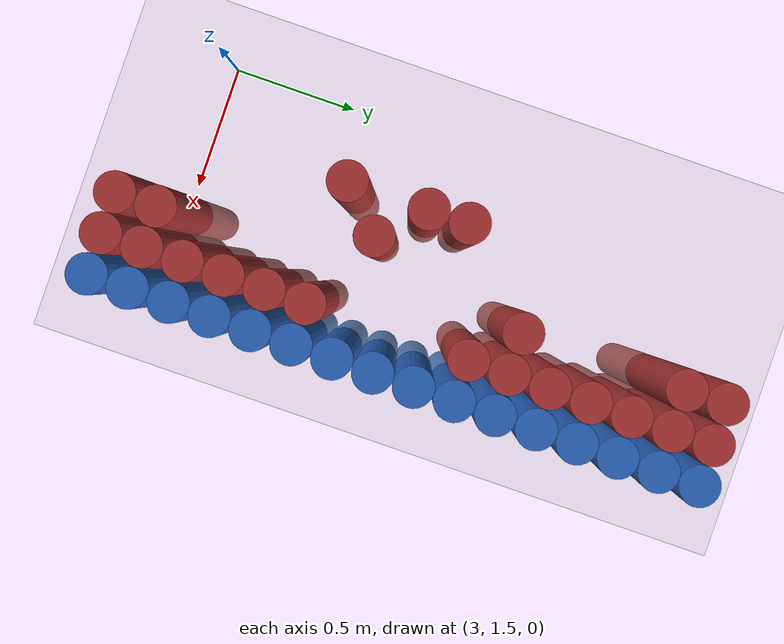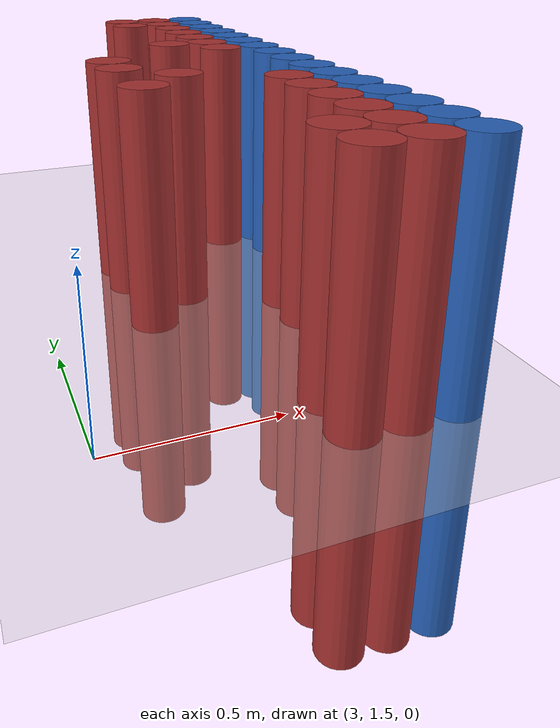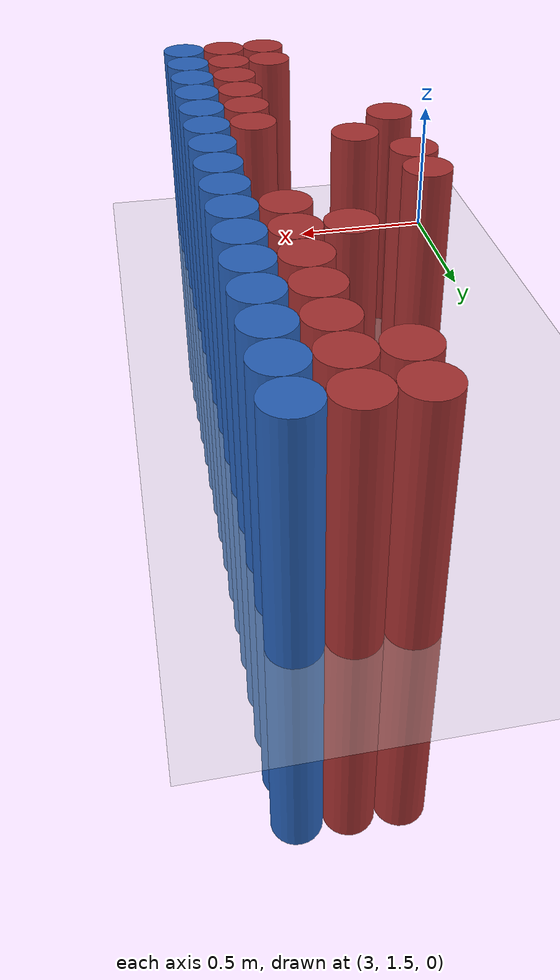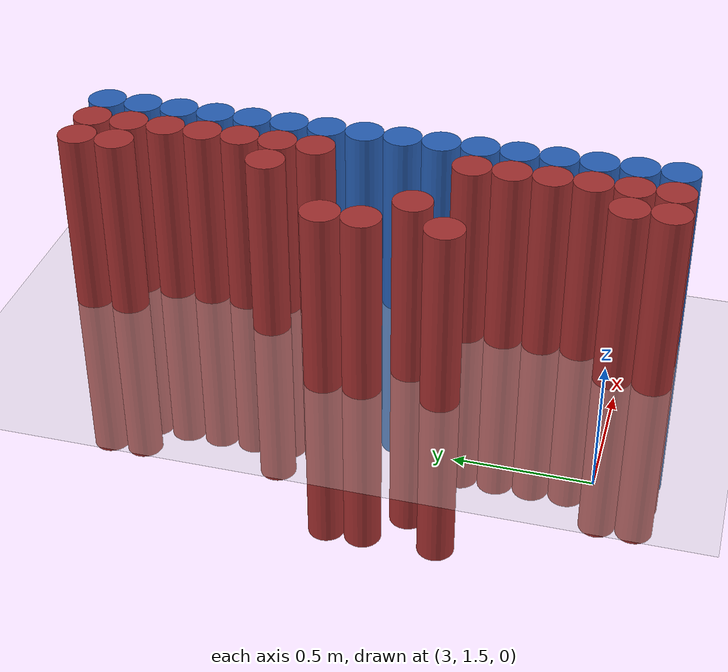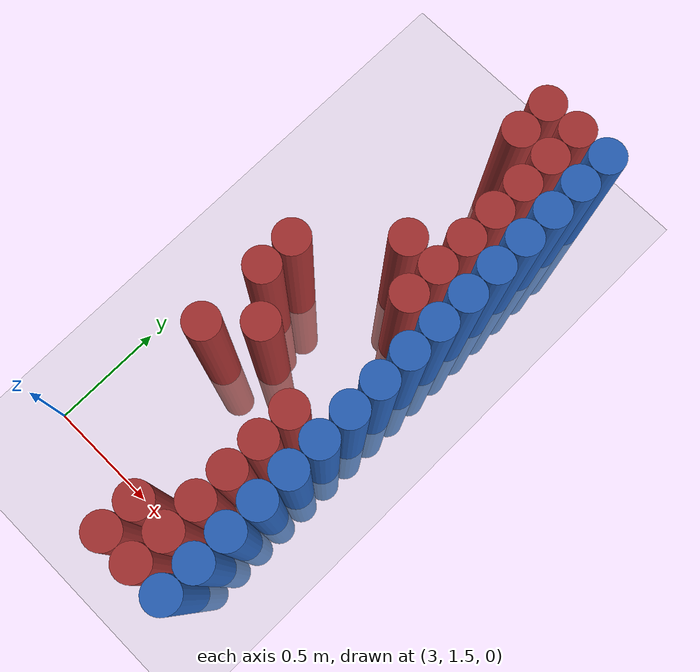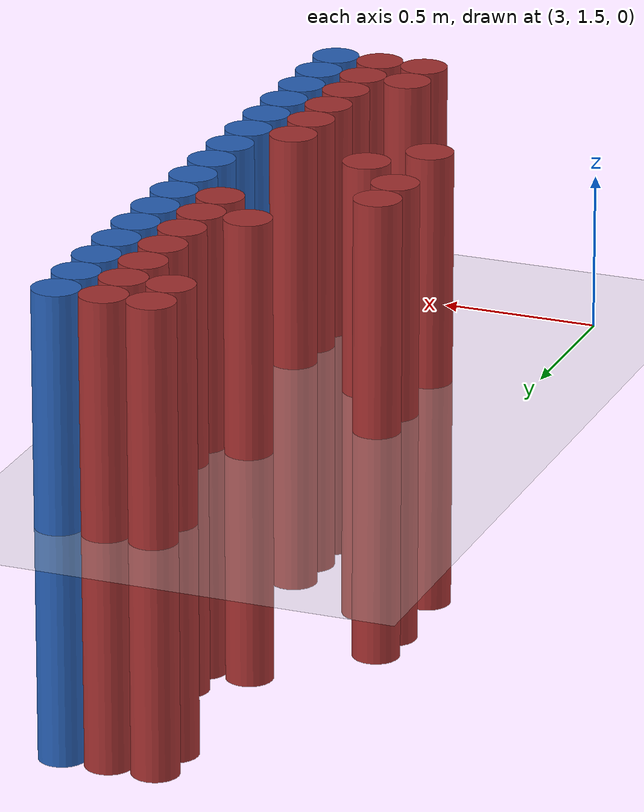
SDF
<sdf version="1.6">
 <world name="default">
  <model name="ground_plane">
   <static>1</static>
   <link name="link">
    <collision name="collision">
     <geometry><plane><normal>0 0 1</normal><size>100 100</size></plane></geometry>
     <surface><friction><ode><mu>100</mu><mu2>50</mu2></ode></friction></surface>
    </collision>
    <visual name="visual">
     <cast_shadows>0</cast_shadows>
     <geometry><plane><normal>0 0 1</normal><size>100 100</size></plane></geometry>
     <material>
      <script><uri>file://media/materials/scripts/gazebo.material</uri><name>Gazebo/Grey</name></script>
     </material>
    </visual>
   </link>
  </model>
  <model name="unit_cylinder_134">
   <static>1</static>
   <pose>3.925000 1.525000 0.000000 0.000000 0.000000 0.000000</pose>
   <link name="link">
    <inertial>
     <mass>1</mass>
     <inertia><ixx>0.145833</ixx><ixy>0</ixy><ixz>0</ixz><iyy>0.145833</iyy><iyz>0</iyz><izz>0.125</izz></inertia>
    </inertial>
    <collision name="collision">
     <geometry><cylinder><radius>0.075000</radius><length>1.5</length></cylinder></geometry>
    </collision>
    <visual name="visual">
     <geometry><cylinder><radius>0.075000</radius><length>1.5</length></cylinder></geometry>
     <material>
      <ambient>0.152000 0.379000 0.720000 1</ambient>
      <diffuse>0.152000 0.379000 0.720000 1</diffuse>
     </material>
     <material>
      <script><name>Gazebo/Grey</name><uri>file://media/materials/scripts/gazebo.material</uri></script>
     </material>
    </visual>
   </link>
  </model>
  <model name="unit_cylinder_136">
   <static>1</static>
   <pose>3.925000 1.675000 0.000000 0.000000 0.000000 0.000000</pose>
   <link name="link">
    <inertial>
     <mass>1</mass>
     <inertia><ixx>0.145833</ixx><ixy>0</ixy><ixz>0</ixz><iyy>0.145833</iyy><iyz>0</iyz><izz>0.125</izz></inertia>
    </inertial>
    <collision name="collision">
     <geometry><cylinder><radius>0.075000</radius><length>1.5</length></cylinder></geometry>
    </collision>
    <visual name="visual">
     <geometry><cylinder><radius>0.075000</radius><length>1.5</length></cylinder></geometry>
     <material>
      <ambient>0.152000 0.379000 0.720000 1</ambient>
      <diffuse>0.152000 0.379000 0.720000 1</diffuse>
     </material>
     <material>
      <script><name>Gazebo/Grey</name><uri>file://media/materials/scripts/gazebo.material</uri></script>
     </material>
    </visual>
   </link>
  </model>
  <model name="unit_cylinder_138">
   <static>1</static>
   <pose>3.925000 1.825000 0.000000 0.000000 0.000000 0.000000</pose>
   <link name="link">
    <inertial>
     <mass>1</mass>
     <inertia><ixx>0.145833</ixx><ixy>0</ixy><ixz>0</ixz><iyy>0.145833</iyy><iyz>0</iyz><izz>0.125</izz></inertia>
    </inertial>
    <collision name="collision">
     <geometry><cylinder><radius>0.075000</radius><length>1.5</length></cylinder></geometry>
    </collision>
    <visual name="visual">
     <geometry><cylinder><radius>0.075000</radius><length>1.5</length></cylinder></geometry>
     <material>
      <ambient>0.152000 0.379000 0.720000 1</ambient>
      <diffuse>0.152000 0.379000 0.720000 1</diffuse>
     </material>
     <material>
      <script><name>Gazebo/Grey</name><uri>file://media/materials/scripts/gazebo.material</uri></script>
     </material>
    </visual>
   </link>
  </model>
  <model name="unit_cylinder_140">
   <static>1</static>
   <pose>3.925000 1.975000 0.000000 0.000000 0.000000 0.000000</pose>
   <link name="link">
    <inertial>
     <mass>1</mass>
     <inertia><ixx>0.145833</ixx><ixy>0</ixy><ixz>0</ixz><iyy>0.145833</iyy><iyz>0</iyz><izz>0.125</izz></inertia>
    </inertial>
    <collision name="collision">
     <geometry><cylinder><radius>0.075000</radius><length>1.5</length></cylinder></geometry>
    </collision>
    <visual name="visual">
     <geometry><cylinder><radius>0.075000</radius><length>1.5</length></cylinder></geometry>
     <material>
      <ambient>0.152000 0.379000 0.720000 1</ambient>
      <diffuse>0.152000 0.379000 0.720000 1</diffuse>
     </material>
     <material>
      <script><name>Gazebo/Grey</name><uri>file://media/materials/scripts/gazebo.material</uri></script>
     </material>
    </visual>
   </link>
  </model>
  <model name="unit_cylinder_142">
   <static>1</static>
   <pose>3.925000 2.125000 0.000000 0.000000 0.000000 0.000000</pose>
   <link name="link">
    <inertial>
     <mass>1</mass>
     <inertia><ixx>0.145833</ixx><ixy>0</ixy><ixz>0</ixz><iyy>0.145833</iyy><iyz>0</iyz><izz>0.125</izz></inertia>
    </inertial>
    <collision name="collision">
     <geometry><cylinder><radius>0.075000</radius><length>1.5</length></cylinder></geometry>
    </collision>
    <visual name="visual">
     <geometry><cylinder><radius>0.075000</radius><length>1.5</length></cylinder></geometry>
     <material>
      <ambient>0.152000 0.379000 0.720000 1</ambient>
      <diffuse>0.152000 0.379000 0.720000 1</diffuse>
     </material>
     <material>
      <script><name>Gazebo/Grey</name><uri>file://media/materials/scripts/gazebo.material</uri></script>
     </material>
    </visual>
   </link>
  </model>
  <model name="unit_cylinder_144">
   <static>1</static>
   <pose>3.925000 2.275000 0.000000 0.000000 0.000000 0.000000</pose>
   <link name="link">
    <inertial>
     <mass>1</mass>
     <inertia><ixx>0.145833</ixx><ixy>0</ixy><ixz>0</ixz><iyy>0.145833</iyy><iyz>0</iyz><izz>0.125</izz></inertia>
    </inertial>
    <collision name="collision">
     <geometry><cylinder><radius>0.075000</radius><length>1.5</length></cylinder></geometry>
    </collision>
    <visual name="visual">
     <geometry><cylinder><radius>0.075000</radius><length>1.5</length></cylinder></geometry>
     <material>
      <ambient>0.152000 0.379000 0.720000 1</ambient>
      <diffuse>0.152000 0.379000 0.720000 1</diffuse>
     </material>
     <material>
      <script><name>Gazebo/Grey</name><uri>file://media/materials/scripts/gazebo.material</uri></script>
     </material>
    </visual>
   </link>
  </model>
  <model name="unit_cylinder_146">
   <static>1</static>
   <pose>3.925000 2.425000 0.000000 0.000000 0.000000 0.000000</pose>
   <link name="link">
    <inertial>
     <mass>1</mass>
     <inertia><ixx>0.145833</ixx><ixy>0</ixy><ixz>0</ixz><iyy>0.145833</iyy><iyz>0</iyz><izz>0.125</izz></inertia>
    </inertial>
    <collision name="collision">
     <geometry><cylinder><radius>0.075000</radius><length>1.5</length></cylinder></geometry>
    </collision>
    <visual name="visual">
     <geometry><cylinder><radius>0.075000</radius><length>1.5</length></cylinder></geometry>
     <material>
      <ambient>0.152000 0.379000 0.720000 1</ambient>
      <diffuse>0.152000 0.379000 0.720000 1</diffuse>
     </material>
     <material>
      <script><name>Gazebo/Grey</name><uri>file://media/materials/scripts/gazebo.material</uri></script>
     </material>
    </visual>
   </link>
  </model>
  <model name="unit_cylinder_148">
   <static>1</static>
   <pose>3.925000 2.575000 0.000000 0.000000 0.000000 0.000000</pose>
   <link name="link">
    <inertial>
     <mass>1</mass>
     <inertia><ixx>0.145833</ixx><ixy>0</ixy><ixz>0</ixz><iyy>0.145833</iyy><iyz>0</iyz><izz>0.125</izz></inertia>
    </inertial>
    <collision name="collision">
     <geometry><cylinder><radius>0.075000</radius><length>1.5</length></cylinder></geometry>
    </collision>
    <visual name="visual">
     <geometry><cylinder><radius>0.075000</radius><length>1.5</length></cylinder></geometry>
     <material>
      <ambient>0.152000 0.379000 0.720000 1</ambient>
      <diffuse>0.152000 0.379000 0.720000 1</diffuse>
     </material>
     <material>
      <script><name>Gazebo/Grey</name><uri>file://media/materials/scripts/gazebo.material</uri></script>
     </material>
    </visual>
   </link>
  </model>
  <model name="unit_cylinder_150">
   <static>1</static>
   <pose>3.925000 2.725000 0.000000 0.000000 0.000000 0.000000</pose>
   <link name="link">
    <inertial>
     <mass>1</mass>
     <inertia><ixx>0.145833</ixx><ixy>0</ixy><ixz>0</ixz><iyy>0.145833</iyy><iyz>0</iyz><izz>0.125</izz></inertia>
    </inertial>
    <collision name="collision">
     <geometry><cylinder><radius>0.075000</radius><length>1.5</length></cylinder></geometry>
    </collision>
    <visual name="visual">
     <geometry><cylinder><radius>0.075000</radius><length>1.5</length></cylinder></geometry>
     <material>
      <ambient>0.152000 0.379000 0.720000 1</ambient>
      <diffuse>0.152000 0.379000 0.720000 1</diffuse>
     </material>
     <material>
      <script><name>Gazebo/Grey</name><uri>file://media/materials/scripts/gazebo.material</uri></script>
     </material>
    </visual>
   </link>
  </model>
  <model name="unit_cylinder_152">
   <static>1</static>
   <pose>3.925000 2.875000 0.000000 0.000000 0.000000 0.000000</pose>
   <link name="link">
    <inertial>
     <mass>1</mass>
     <inertia><ixx>0.145833</ixx><ixy>0</ixy><ixz>0</ixz><iyy>0.145833</iyy><iyz>0</iyz><izz>0.125</izz></inertia>
    </inertial>
    <collision name="collision">
     <geometry><cylinder><radius>0.075000</radius><length>1.5</length></cylinder></geometry>
    </collision>
    <visual name="visual">
     <geometry><cylinder><radius>0.075000</radius><length>1.5</length></cylinder></geometry>
     <material>
      <ambient>0.152000 0.379000 0.720000 1</ambient>
      <diffuse>0.152000 0.379000 0.720000 1</diffuse>
     </material>
     <material>
      <script><name>Gazebo/Grey</name><uri>file://media/materials/scripts/gazebo.material</uri></script>
     </material>
    </visual>
   </link>
  </model>
  <model name="unit_cylinder_154">
   <static>1</static>
   <pose>3.925000 3.025000 0.000000 0.000000 0.000000 0.000000</pose>
   <link name="link">
    <inertial>
     <mass>1</mass>
     <inertia><ixx>0.145833</ixx><ixy>0</ixy><ixz>0</ixz><iyy>0.145833</iyy><iyz>0</iyz><izz>0.125</izz></inertia>
    </inertial>
    <collision name="collision">
     <geometry><cylinder><radius>0.075000</radius><length>1.5</length></cylinder></geometry>
    </collision>
    <visual name="visual">
     <geometry><cylinder><radius>0.075000</radius><length>1.5</length></cylinder></geometry>
     <material>
      <ambient>0.152000 0.379000 0.720000 1</ambient>
      <diffuse>0.152000 0.379000 0.720000 1</diffuse>
     </material>
     <material>
      <script><name>Gazebo/Grey</name><uri>file://media/materials/scripts/gazebo.material</uri></script>
     </material>
    </visual>
   </link>
  </model>
  <model name="unit_cylinder_156">
   <static>1</static>
   <pose>3.925000 3.175000 0.000000 0.000000 0.000000 0.000000</pose>
   <link name="link">
    <inertial>
     <mass>1</mass>
     <inertia><ixx>0.145833</ixx><ixy>0</ixy><ixz>0</ixz><iyy>0.145833</iyy><iyz>0</iyz><izz>0.125</izz></inertia>
    </inertial>
    <collision name="collision">
     <geometry><cylinder><radius>0.075000</radius><length>1.5</length></cylinder></geometry>
    </collision>
    <visual name="visual">
     <geometry><cylinder><radius>0.075000</radius><length>1.5</length></cylinder></geometry>
     <material>
      <ambient>0.152000 0.379000 0.720000 1</ambient>
      <diffuse>0.152000 0.379000 0.720000 1</diffuse>
     </material>
     <material>
      <script><name>Gazebo/Grey</name><uri>file://media/materials/scripts/gazebo.material</uri></script>
     </material>
    </visual>
   </link>
  </model>
  <model name="unit_cylinder_158">
   <static>1</static>
   <pose>3.925000 3.325000 0.000000 0.000000 0.000000 0.000000</pose>
   <link name="link">
    <inertial>
     <mass>1</mass>
     <inertia><ixx>0.145833</ixx><ixy>0</ixy><ixz>0</ixz><iyy>0.145833</iyy><iyz>0</iyz><izz>0.125</izz></inertia>
    </inertial>
    <collision name="collision">
     <geometry><cylinder><radius>0.075000</radius><length>1.5</length></cylinder></geometry>
    </collision>
    <visual name="visual">
     <geometry><cylinder><radius>0.075000</radius><length>1.5</length></cylinder></geometry>
     <material>
      <ambient>0.152000 0.379000 0.720000 1</ambient>
      <diffuse>0.152000 0.379000 0.720000 1</diffuse>
     </material>
     <material>
      <script><name>Gazebo/Grey</name><uri>file://media/materials/scripts/gazebo.material</uri></script>
     </material>
    </visual>
   </link>
  </model>
  <model name="unit_cylinder_160">
   <static>1</static>
   <pose>3.925000 3.475000 0.000000 0.000000 0.000000 0.000000</pose>
   <link name="link">
    <inertial>
     <mass>1</mass>
     <inertia><ixx>0.145833</ixx><ixy>0</ixy><ixz>0</ixz><iyy>0.145833</iyy><iyz>0</iyz><izz>0.125</izz></inertia>
    </inertial>
    <collision name="collision">
     <geometry><cylinder><radius>0.075000</radius><length>1.5</length></cylinder></geometry>
    </collision>
    <visual name="visual">
     <geometry><cylinder><radius>0.075000</radius><length>1.5</length></cylinder></geometry>
     <material>
      <ambient>0.152000 0.379000 0.720000 1</ambient>
      <diffuse>0.152000 0.379000 0.720000 1</diffuse>
     </material>
     <material>
      <script><name>Gazebo/Grey</name><uri>file://media/materials/scripts/gazebo.material</uri></script>
     </material>
    </visual>
   </link>
  </model>
  <model name="unit_cylinder_162">
   <static>1</static>
   <pose>3.925000 3.625000 0.000000 0.000000 0.000000 0.000000</pose>
   <link name="link">
    <inertial>
     <mass>1</mass>
     <inertia><ixx>0.145833</ixx><ixy>0</ixy><ixz>0</ixz><iyy>0.145833</iyy><iyz>0</iyz><izz>0.125</izz></inertia>
    </inertial>
    <collision name="collision">
     <geometry><cylinder><radius>0.075000</radius><length>1.5</length></cylinder></geometry>
    </collision>
    <visual name="visual">
     <geometry><cylinder><radius>0.075000</radius><length>1.5</length></cylinder></geometry>
     <material>
      <ambient>0.152000 0.379000 0.720000 1</ambient>
      <diffuse>0.152000 0.379000 0.720000 1</diffuse>
     </material>
     <material>
      <script><name>Gazebo/Grey</name><uri>file://media/materials/scripts/gazebo.material</uri></script>
     </material>
    </visual>
   </link>
  </model>
  <model name="unit_cylinder_625">
   <static>1</static>
   <pose>3.325000 2.125000 0.000000 0.000000 0.000000 0.000000</pose>
   <link name="link">
    <inertial>
     <mass>1</mass>
     <inertia><ixx>0.145833</ixx><ixy>0</ixy><ixz>0</ixz><iyy>0.145833</iyy><iyz>0</iyz><izz>0.125</izz></inertia>
    </inertial>
    <collision name="collision">
     <geometry><cylinder><radius>0.075000</radius><length>1.5</length></cylinder></geometry>
    </collision>
    <visual name="visual">
     <geometry><cylinder><radius>0.075000</radius><length>1.5</length></cylinder></geometry>
     <material>
      <ambient>0.648000 0.192000 0.192000 1</ambient>
      <diffuse>0.648000 0.192000 0.192000 1</diffuse>
     </material>
     <material>
      <script><name>Gazebo/Grey</name><uri>file://media/materials/scripts/gazebo.material</uri></script>
     </material>
    </visual>
   </link>
  </model>
  <model name="unit_cylinder_626">
   <static>1</static>
   <pose>3.325000 2.425000 0.000000 0.000000 0.000000 0.000000</pose>
   <link name="link">
    <inertial>
     <mass>1</mass>
     <inertia><ixx>0.145833</ixx><ixy>0</ixy><ixz>0</ixz><iyy>0.145833</iyy><iyz>0</iyz><izz>0.125</izz></inertia>
    </inertial>
    <collision name="collision">
     <geometry><cylinder><radius>0.075000</radius><length>1.5</length></cylinder></geometry>
    </collision>
    <visual name="visual">
     <geometry><cylinder><radius>0.075000</radius><length>1.5</length></cylinder></geometry>
     <material>
      <ambient>0.648000 0.192000 0.192000 1</ambient>
      <diffuse>0.648000 0.192000 0.192000 1</diffuse>
     </material>
     <material>
      <script><name>Gazebo/Grey</name><uri>file://media/materials/scripts/gazebo.material</uri></script>
     </material>
    </visual>
   </link>
  </model>
  <model name="unit_cylinder_627">
   <static>1</static>
   <pose>3.325000 2.575000 0.000000 0.000000 0.000000 0.000000</pose>
   <link name="link">
    <inertial>
     <mass>1</mass>
     <inertia><ixx>0.145833</ixx><ixy>0</ixy><ixz>0</ixz><iyy>0.145833</iyy><iyz>0</iyz><izz>0.125</izz></inertia>
    </inertial>
    <collision name="collision">
     <geometry><cylinder><radius>0.075000</radius><length>1.5</length></cylinder></geometry>
    </collision>
    <visual name="visual">
     <geometry><cylinder><radius>0.075000</radius><length>1.5</length></cylinder></geometry>
     <material>
      <ambient>0.648000 0.192000 0.192000 1</ambient>
      <diffuse>0.648000 0.192000 0.192000 1</diffuse>
     </material>
     <material>
      <script><name>Gazebo/Grey</name><uri>file://media/materials/scripts/gazebo.material</uri></script>
     </material>
    </visual>
   </link>
  </model>
  <model name="unit_cylinder_636">
   <static>1</static>
   <pose>3.475000 2.275000 0.000000 0.000000 0.000000 0.000000</pose>
   <link name="link">
    <inertial>
     <mass>1</mass>
     <inertia><ixx>0.145833</ixx><ixy>0</ixy><ixz>0</ixz><iyy>0.145833</iyy><iyz>0</iyz><izz>0.125</izz></inertia>
    </inertial>
    <collision name="collision">
     <geometry><cylinder><radius>0.075000</radius><length>1.5</length></cylinder></geometry>
    </collision>
    <visual name="visual">
     <geometry><cylinder><radius>0.075000</radius><length>1.5</length></cylinder></geometry>
     <material>
      <ambient>0.648000 0.192000 0.192000 1</ambient>
      <diffuse>0.648000 0.192000 0.192000 1</diffuse>
     </material>
     <material>
      <script><name>Gazebo/Grey</name><uri>file://media/materials/scripts/gazebo.material</uri></script>
     </material>
    </visual>
   </link>
  </model>
  <model name="unit_cylinder_642">
   <static>1</static>
   <pose>3.625000 1.375000 0.000000 0.000000 0.000000 0.000000</pose>
   <link name="link">
    <inertial>
     <mass>1</mass>
     <inertia><ixx>0.145833</ixx><ixy>0</ixy><ixz>0</ixz><iyy>0.145833</iyy><iyz>0</iyz><izz>0.125</izz></inertia>
    </inertial>
    <collision name="collision">
     <geometry><cylinder><radius>0.075000</radius><length>1.5</length></cylinder></geometry>
    </collision>
    <visual name="visual">
     <geometry><cylinder><radius>0.075000</radius><length>1.5</length></cylinder></geometry>
     <material>
      <ambient>0.648000 0.192000 0.192000 1</ambient>
      <diffuse>0.648000 0.192000 0.192000 1</diffuse>
     </material>
     <material>
      <script><name>Gazebo/Grey</name><uri>file://media/materials/scripts/gazebo.material</uri></script>
     </material>
    </visual>
   </link>
  </model>
  <model name="unit_cylinder_643">
   <static>1</static>
   <pose>3.625000 1.525000 0.000000 0.000000 0.000000 0.000000</pose>
   <link name="link">
    <inertial>
     <mass>1</mass>
     <inertia><ixx>0.145833</ixx><ixy>0</ixy><ixz>0</ixz><iyy>0.145833</iyy><iyz>0</iyz><izz>0.125</izz></inertia>
    </inertial>
    <collision name="collision">
     <geometry><cylinder><radius>0.075000</radius><length>1.5</length></cylinder></geometry>
    </collision>
    <visual name="visual">
     <geometry><cylinder><radius>0.075000</radius><length>1.5</length></cylinder></geometry>
     <material>
      <ambient>0.648000 0.192000 0.192000 1</ambient>
      <diffuse>0.648000 0.192000 0.192000 1</diffuse>
     </material>
     <material>
      <script><name>Gazebo/Grey</name><uri>file://media/materials/scripts/gazebo.material</uri></script>
     </material>
    </visual>
   </link>
  </model>
  <model name="unit_cylinder_644">
   <static>1</static>
   <pose>3.625000 2.875000 0.000000 0.000000 0.000000 0.000000</pose>
   <link name="link">
    <inertial>
     <mass>1</mass>
     <inertia><ixx>0.145833</ixx><ixy>0</ixy><ixz>0</ixz><iyy>0.145833</iyy><iyz>0</iyz><izz>0.125</izz></inertia>
    </inertial>
    <collision name="collision">
     <geometry><cylinder><radius>0.075000</radius><length>1.5</length></cylinder></geometry>
    </collision>
    <visual name="visual">
     <geometry><cylinder><radius>0.075000</radius><length>1.5</length></cylinder></geometry>
     <material>
      <ambient>0.648000 0.192000 0.192000 1</ambient>
      <diffuse>0.648000 0.192000 0.192000 1</diffuse>
     </material>
     <material>
      <script><name>Gazebo/Grey</name><uri>file://media/materials/scripts/gazebo.material</uri></script>
     </material>
    </visual>
   </link>
  </model>
  <model name="unit_cylinder_645">
   <static>1</static>
   <pose>3.625000 3.475000 0.000000 0.000000 0.000000 0.000000</pose>
   <link name="link">
    <inertial>
     <mass>1</mass>
     <inertia><ixx>0.145833</ixx><ixy>0</ixy><ixz>0</ixz><iyy>0.145833</iyy><iyz>0</iyz><izz>0.125</izz></inertia>
    </inertial>
    <collision name="collision">
     <geometry><cylinder><radius>0.075000</radius><length>1.5</length></cylinder></geometry>
    </collision>
    <visual name="visual">
     <geometry><cylinder><radius>0.075000</radius><length>1.5</length></cylinder></geometry>
     <material>
      <ambient>0.648000 0.192000 0.192000 1</ambient>
      <diffuse>0.648000 0.192000 0.192000 1</diffuse>
     </material>
     <material>
      <script><name>Gazebo/Grey</name><uri>file://media/materials/scripts/gazebo.material</uri></script>
     </material>
    </visual>
   </link>
  </model>
  <model name="unit_cylinder_646">
   <static>1</static>
   <pose>3.625000 3.625000 0.000000 0.000000 0.000000 0.000000</pose>
   <link name="link">
    <inertial>
     <mass>1</mass>
     <inertia><ixx>0.145833</ixx><ixy>0</ixy><ixz>0</ixz><iyy>0.145833</iyy><iyz>0</iyz><izz>0.125</izz></inertia>
    </inertial>
    <collision name="collision">
     <geometry><cylinder><radius>0.075000</radius><length>1.5</length></cylinder></geometry>
    </collision>
    <visual name="visual">
     <geometry><cylinder><radius>0.075000</radius><length>1.5</length></cylinder></geometry>
     <material>
      <ambient>0.648000 0.192000 0.192000 1</ambient>
      <diffuse>0.648000 0.192000 0.192000 1</diffuse>
     </material>
     <material>
      <script><name>Gazebo/Grey</name><uri>file://media/materials/scripts/gazebo.material</uri></script>
     </material>
    </visual>
   </link>
  </model>
  <model name="unit_cylinder_665">
   <static>1</static>
   <pose>3.775000 1.375000 0.000000 0.000000 0.000000 0.000000</pose>
   <link name="link">
    <inertial>
     <mass>1</mass>
     <inertia><ixx>0.145833</ixx><ixy>0</ixy><ixz>0</ixz><iyy>0.145833</iyy><iyz>0</iyz><izz>0.125</izz></inertia>
    </inertial>
    <collision name="collision">
     <geometry><cylinder><radius>0.075000</radius><length>1.5</length></cylinder></geometry>
    </collision>
    <visual name="visual">
     <geometry><cylinder><radius>0.075000</radius><length>1.5</length></cylinder></geometry>
     <material>
      <ambient>0.648000 0.192000 0.192000 1</ambient>
      <diffuse>0.648000 0.192000 0.192000 1</diffuse>
     </material>
     <material>
      <script><name>Gazebo/Grey</name><uri>file://media/materials/scripts/gazebo.material</uri></script>
     </material>
    </visual>
   </link>
  </model>
  <model name="unit_cylinder_666">
   <static>1</static>
   <pose>3.775000 1.525000 0.000000 0.000000 0.000000 0.000000</pose>
   <link name="link">
    <inertial>
     <mass>1</mass>
     <inertia><ixx>0.145833</ixx><ixy>0</ixy><ixz>0</ixz><iyy>0.145833</iyy><iyz>0</iyz><izz>0.125</izz></inertia>
    </inertial>
    <collision name="collision">
     <geometry><cylinder><radius>0.075000</radius><length>1.5</length></cylinder></geometry>
    </collision>
    <visual name="visual">
     <geometry><cylinder><radius>0.075000</radius><length>1.5</length></cylinder></geometry>
     <material>
      <ambient>0.648000 0.192000 0.192000 1</ambient>
      <diffuse>0.648000 0.192000 0.192000 1</diffuse>
     </material>
     <material>
      <script><name>Gazebo/Grey</name><uri>file://media/materials/scripts/gazebo.material</uri></script>
     </material>
    </visual>
   </link>
  </model>
  <model name="unit_cylinder_667">
   <static>1</static>
   <pose>3.775000 1.675000 0.000000 0.000000 0.000000 0.000000</pose>
   <link name="link">
    <inertial>
     <mass>1</mass>
     <inertia><ixx>0.145833</ixx><ixy>0</ixy><ixz>0</ixz><iyy>0.145833</iyy><iyz>0</iyz><izz>0.125</izz></inertia>
    </inertial>
    <collision name="collision">
     <geometry><cylinder><radius>0.075000</radius><length>1.5</length></cylinder></geometry>
    </collision>
    <visual name="visual">
     <geometry><cylinder><radius>0.075000</radius><length>1.5</length></cylinder></geometry>
     <material>
      <ambient>0.648000 0.192000 0.192000 1</ambient>
      <diffuse>0.648000 0.192000 0.192000 1</diffuse>
     </material>
     <material>
      <script><name>Gazebo/Grey</name><uri>file://media/materials/scripts/gazebo.material</uri></script>
     </material>
    </visual>
   </link>
  </model>
  <model name="unit_cylinder_668">
   <static>1</static>
   <pose>3.775000 1.825000 0.000000 0.000000 0.000000 0.000000</pose>
   <link name="link">
    <inertial>
     <mass>1</mass>
     <inertia><ixx>0.145833</ixx><ixy>0</ixy><ixz>0</ixz><iyy>0.145833</iyy><iyz>0</iyz><izz>0.125</izz></inertia>
    </inertial>
    <collision name="collision">
     <geometry><cylinder><radius>0.075000</radius><length>1.5</length></cylinder></geometry>
    </collision>
    <visual name="visual">
     <geometry><cylinder><radius>0.075000</radius><length>1.5</length></cylinder></geometry>
     <material>
      <ambient>0.648000 0.192000 0.192000 1</ambient>
      <diffuse>0.648000 0.192000 0.192000 1</diffuse>
     </material>
     <material>
      <script><name>Gazebo/Grey</name><uri>file://media/materials/scripts/gazebo.material</uri></script>
     </material>
    </visual>
   </link>
  </model>
  <model name="unit_cylinder_669">
   <static>1</static>
   <pose>3.775000 1.975000 0.000000 0.000000 0.000000 0.000000</pose>
   <link name="link">
    <inertial>
     <mass>1</mass>
     <inertia><ixx>0.145833</ixx><ixy>0</ixy><ixz>0</ixz><iyy>0.145833</iyy><iyz>0</iyz><izz>0.125</izz></inertia>
    </inertial>
    <collision name="collision">
     <geometry><cylinder><radius>0.075000</radius><length>1.5</length></cylinder></geometry>
    </collision>
    <visual name="visual">
     <geometry><cylinder><radius>0.075000</radius><length>1.5</length></cylinder></geometry>
     <material>
      <ambient>0.648000 0.192000 0.192000 1</ambient>
      <diffuse>0.648000 0.192000 0.192000 1</diffuse>
     </material>
     <material>
      <script><name>Gazebo/Grey</name><uri>file://media/materials/scripts/gazebo.material</uri></script>
     </material>
    </visual>
   </link>
  </model>
  <model name="unit_cylinder_670">
   <static>1</static>
   <pose>3.775000 2.125000 0.000000 0.000000 0.000000 0.000000</pose>
   <link name="link">
    <inertial>
     <mass>1</mass>
     <inertia><ixx>0.145833</ixx><ixy>0</ixy><ixz>0</ixz><iyy>0.145833</iyy><iyz>0</iyz><izz>0.125</izz></inertia>
    </inertial>
    <collision name="collision">
     <geometry><cylinder><radius>0.075000</radius><length>1.5</length></cylinder></geometry>
    </collision>
    <visual name="visual">
     <geometry><cylinder><radius>0.075000</radius><length>1.5</length></cylinder></geometry>
     <material>
      <ambient>0.648000 0.192000 0.192000 1</ambient>
      <diffuse>0.648000 0.192000 0.192000 1</diffuse>
     </material>
     <material>
      <script><name>Gazebo/Grey</name><uri>file://media/materials/scripts/gazebo.material</uri></script>
     </material>
    </visual>
   </link>
  </model>
  <model name="unit_cylinder_671">
   <static>1</static>
   <pose>3.775000 2.725000 0.000000 0.000000 0.000000 0.000000</pose>
   <link name="link">
    <inertial>
     <mass>1</mass>
     <inertia><ixx>0.145833</ixx><ixy>0</ixy><ixz>0</ixz><iyy>0.145833</iyy><iyz>0</iyz><izz>0.125</izz></inertia>
    </inertial>
    <collision name="collision">
     <geometry><cylinder><radius>0.075000</radius><length>1.5</length></cylinder></geometry>
    </collision>
    <visual name="visual">
     <geometry><cylinder><radius>0.075000</radius><length>1.5</length></cylinder></geometry>
     <material>
      <ambient>0.648000 0.192000 0.192000 1</ambient>
      <diffuse>0.648000 0.192000 0.192000 1</diffuse>
     </material>
     <material>
      <script><name>Gazebo/Grey</name><uri>file://media/materials/scripts/gazebo.material</uri></script>
     </material>
    </visual>
   </link>
  </model>
  <model name="unit_cylinder_672">
   <static>1</static>
   <pose>3.775000 2.875000 0.000000 0.000000 0.000000 0.000000</pose>
   <link name="link">
    <inertial>
     <mass>1</mass>
     <inertia><ixx>0.145833</ixx><ixy>0</ixy><ixz>0</ixz><iyy>0.145833</iyy><iyz>0</iyz><izz>0.125</izz></inertia>
    </inertial>
    <collision name="collision">
     <geometry><cylinder><radius>0.075000</radius><length>1.5</length></cylinder></geometry>
    </collision>
    <visual name="visual">
     <geometry><cylinder><radius>0.075000</radius><length>1.5</length></cylinder></geometry>
     <material>
      <ambient>0.648000 0.192000 0.192000 1</ambient>
      <diffuse>0.648000 0.192000 0.192000 1</diffuse>
     </material>
     <material>
      <script><name>Gazebo/Grey</name><uri>file://media/materials/scripts/gazebo.material</uri></script>
     </material>
    </visual>
   </link>
  </model>
  <model name="unit_cylinder_673">
   <static>1</static>
   <pose>3.775000 3.025000 0.000000 0.000000 0.000000 0.000000</pose>
   <link name="link">
    <inertial>
     <mass>1</mass>
     <inertia><ixx>0.145833</ixx><ixy>0</ixy><ixz>0</ixz><iyy>0.145833</iyy><iyz>0</iyz><izz>0.125</izz></inertia>
    </inertial>
    <collision name="collision">
     <geometry><cylinder><radius>0.075000</radius><length>1.5</length></cylinder></geometry>
    </collision>
    <visual name="visual">
     <geometry><cylinder><radius>0.075000</radius><length>1.5</length></cylinder></geometry>
     <material>
      <ambient>0.648000 0.192000 0.192000 1</ambient>
      <diffuse>0.648000 0.192000 0.192000 1</diffuse>
     </material>
     <material>
      <script><name>Gazebo/Grey</name><uri>file://media/materials/scripts/gazebo.material</uri></script>
     </material>
    </visual>
   </link>
  </model>
  <model name="unit_cylinder_674">
   <static>1</static>
   <pose>3.775000 3.175000 0.000000 0.000000 0.000000 0.000000</pose>
   <link name="link">
    <inertial>
     <mass>1</mass>
     <inertia><ixx>0.145833</ixx><ixy>0</ixy><ixz>0</ixz><iyy>0.145833</iyy><iyz>0</iyz><izz>0.125</izz></inertia>
    </inertial>
    <collision name="collision">
     <geometry><cylinder><radius>0.075000</radius><length>1.5</length></cylinder></geometry>
    </collision>
    <visual name="visual">
     <geometry><cylinder><radius>0.075000</radius><length>1.5</length></cylinder></geometry>
     <material>
      <ambient>0.648000 0.192000 0.192000 1</ambient>
      <diffuse>0.648000 0.192000 0.192000 1</diffuse>
     </material>
     <material>
      <script><name>Gazebo/Grey</name><uri>file://media/materials/scripts/gazebo.material</uri></script>
     </material>
    </visual>
   </link>
  </model>
  <model name="unit_cylinder_675">
   <static>1</static>
   <pose>3.775000 3.325000 0.000000 0.000000 0.000000 0.000000</pose>
   <link name="link">
    <inertial>
     <mass>1</mass>
     <inertia><ixx>0.145833</ixx><ixy>0</ixy><ixz>0</ixz><iyy>0.145833</iyy><iyz>0</iyz><izz>0.125</izz></inertia>
    </inertial>
    <collision name="collision">
     <geometry><cylinder><radius>0.075000</radius><length>1.5</length></cylinder></geometry>
    </collision>
    <visual name="visual">
     <geometry><cylinder><radius>0.075000</radius><length>1.5</length></cylinder></geometry>
     <material>
      <ambient>0.648000 0.192000 0.192000 1</ambient>
      <diffuse>0.648000 0.192000 0.192000 1</diffuse>
     </material>
     <material>
      <script><name>Gazebo/Grey</name><uri>file://media/materials/scripts/gazebo.material</uri></script>
     </material>
    </visual>
   </link>
  </model>
  <model name="unit_cylinder_676">
   <static>1</static>
   <pose>3.775000 3.475000 0.000000 0.000000 0.000000 0.000000</pose>
   <link name="link">
    <inertial>
     <mass>1</mass>
     <inertia><ixx>0.145833</ixx><ixy>0</ixy><ixz>0</ixz><iyy>0.145833</iyy><iyz>0</iyz><izz>0.125</izz></inertia>
    </inertial>
    <collision name="collision">
     <geometry><cylinder><radius>0.075000</radius><length>1.5</length></cylinder></geometry>
    </collision>
    <visual name="visual">
     <geometry><cylinder><radius>0.075000</radius><length>1.5</length></cylinder></geometry>
     <material>
      <ambient>0.648000 0.192000 0.192000 1</ambient>
      <diffuse>0.648000 0.192000 0.192000 1</diffuse>
     </material>
     <material>
      <script><name>Gazebo/Grey</name><uri>file://media/materials/scripts/gazebo.material</uri></script>
     </material>
    </visual>
   </link>
  </model>
  <model name="unit_cylinder_677">
   <static>1</static>
   <pose>3.775000 3.625000 0.000000 0.000000 0.000000 0.000000</pose>
   <link name="link">
    <inertial>
     <mass>1</mass>
     <inertia><ixx>0.145833</ixx><ixy>0</ixy><ixz>0</ixz><iyy>0.145833</iyy><iyz>0</iyz><izz>0.125</izz></inertia>
    </inertial>
    <collision name="collision">
     <geometry><cylinder><radius>0.075000</radius><length>1.5</length></cylinder></geometry>
    </collision>
    <visual name="visual">
     <geometry><cylinder><radius>0.075000</radius><length>1.5</length></cylinder></geometry>
     <material>
      <ambient>0.648000 0.192000 0.192000 1</ambient>
      <diffuse>0.648000 0.192000 0.192000 1</diffuse>
     </material>
     <material>
      <script><name>Gazebo/Grey</name><uri>file://media/materials/scripts/gazebo.material</uri></script>
     </material>
    </visual>
   </link>
  </model>
  <model name="unit_cylinder_706">
   <static>1</static>
   <pose>3.925000 1.375000 0.000000 0.000000 0.000000 0.000000</pose>
   <link name="link">
    <inertial>
     <mass>1</mass>
     <inertia><ixx>0.145833</ixx><ixy>0</ixy><ixz>0</ixz><iyy>0.145833</iyy><iyz>0</iyz><izz>0.125</izz></inertia>
    </inertial>
    <collision name="collision">
     <geometry><cylinder><radius>0.075000</radius><length>1.5</length></cylinder></geometry>
    </collision>
    <visual name="visual">
     <geometry><cylinder><radius>0.075000</radius><length>1.5</length></cylinder></geometry>
     <material>
      <ambient>0.152000 0.379000 0.720000 1</ambient>
      <diffuse>0.152000 0.379000 0.720000 1</diffuse>
     </material>
     <material>
      <script><name>Gazebo/Grey</name><uri>file://media/materials/scripts/gazebo.material</uri></script>
     </material>
    </visual>
   </link>
  </model>
  <model name="unit_cylinder_707">
   <static>1</static>
   <pose>3.925000 1.525000 0.000000 0.000000 0.000000 0.000000</pose>
   <link name="link">
    <inertial>
     <mass>1</mass>
     <inertia><ixx>0.145833</ixx><ixy>0</ixy><ixz>0</ixz><iyy>0.145833</iyy><iyz>0</iyz><izz>0.125</izz></inertia>
    </inertial>
    <collision name="collision">
     <geometry><cylinder><radius>0.075000</radius><length>1.5</length></cylinder></geometry>
    </collision>
    <visual name="visual">
     <geometry><cylinder><radius>0.075000</radius><length>1.5</length></cylinder></geometry>
     <material>
      <ambient>0.152000 0.379000 0.720000 1</ambient>
      <diffuse>0.152000 0.379000 0.720000 1</diffuse>
     </material>
     <material>
      <script><name>Gazebo/Grey</name><uri>file://media/materials/scripts/gazebo.material</uri></script>
     </material>
    </visual>
   </link>
  </model>
  <model name="unit_cylinder_708">
   <static>1</static>
   <pose>3.925000 1.675000 0.000000 0.000000 0.000000 0.000000</pose>
   <link name="link">
    <inertial>
     <mass>1</mass>
     <inertia><ixx>0.145833</ixx><ixy>0</ixy><ixz>0</ixz><iyy>0.145833</iyy><iyz>0</iyz><izz>0.125</izz></inertia>
    </inertial>
    <collision name="collision">
     <geometry><cylinder><radius>0.075000</radius><length>1.5</length></cylinder></geometry>
    </collision>
    <visual name="visual">
     <geometry><cylinder><radius>0.075000</radius><length>1.5</length></cylinder></geometry>
     <material>
      <ambient>0.152000 0.379000 0.720000 1</ambient>
      <diffuse>0.152000 0.379000 0.720000 1</diffuse>
     </material>
     <material>
      <script><name>Gazebo/Grey</name><uri>file://media/materials/scripts/gazebo.material</uri></script>
     </material>
    </visual>
   </link>
  </model>
  <model name="unit_cylinder_709">
   <static>1</static>
   <pose>3.925000 1.825000 0.000000 0.000000 0.000000 0.000000</pose>
   <link name="link">
    <inertial>
     <mass>1</mass>
     <inertia><ixx>0.145833</ixx><ixy>0</ixy><ixz>0</ixz><iyy>0.145833</iyy><iyz>0</iyz><izz>0.125</izz></inertia>
    </inertial>
    <collision name="collision">
     <geometry><cylinder><radius>0.075000</radius><length>1.5</length></cylinder></geometry>
    </collision>
    <visual name="visual">
     <geometry><cylinder><radius>0.075000</radius><length>1.5</length></cylinder></geometry>
     <material>
      <ambient>0.152000 0.379000 0.720000 1</ambient>
      <diffuse>0.152000 0.379000 0.720000 1</diffuse>
     </material>
     <material>
      <script><name>Gazebo/Grey</name><uri>file://media/materials/scripts/gazebo.material</uri></script>
     </material>
    </visual>
   </link>
  </model>
  <model name="unit_cylinder_710">
   <static>1</static>
   <pose>3.925000 1.975000 0.000000 0.000000 0.000000 0.000000</pose>
   <link name="link">
    <inertial>
     <mass>1</mass>
     <inertia><ixx>0.145833</ixx><ixy>0</ixy><ixz>0</ixz><iyy>0.145833</iyy><iyz>0</iyz><izz>0.125</izz></inertia>
    </inertial>
    <collision name="collision">
     <geometry><cylinder><radius>0.075000</radius><length>1.5</length></cylinder></geometry>
    </collision>
    <visual name="visual">
     <geometry><cylinder><radius>0.075000</radius><length>1.5</length></cylinder></geometry>
     <material>
      <ambient>0.152000 0.379000 0.720000 1</ambient>
      <diffuse>0.152000 0.379000 0.720000 1</diffuse>
     </material>
     <material>
      <script><name>Gazebo/Grey</name><uri>file://media/materials/scripts/gazebo.material</uri></script>
     </material>
    </visual>
   </link>
  </model>
  <model name="unit_cylinder_711">
   <static>1</static>
   <pose>3.925000 2.125000 0.000000 0.000000 0.000000 0.000000</pose>
   <link name="link">
    <inertial>
     <mass>1</mass>
     <inertia><ixx>0.145833</ixx><ixy>0</ixy><ixz>0</ixz><iyy>0.145833</iyy><iyz>0</iyz><izz>0.125</izz></inertia>
    </inertial>
    <collision name="collision">
     <geometry><cylinder><radius>0.075000</radius><length>1.5</length></cylinder></geometry>
    </collision>
    <visual name="visual">
     <geometry><cylinder><radius>0.075000</radius><length>1.5</length></cylinder></geometry>
     <material>
      <ambient>0.152000 0.379000 0.720000 1</ambient>
      <diffuse>0.152000 0.379000 0.720000 1</diffuse>
     </material>
     <material>
      <script><name>Gazebo/Grey</name><uri>file://media/materials/scripts/gazebo.material</uri></script>
     </material>
    </visual>
   </link>
  </model>
  <model name="unit_cylinder_712">
   <static>1</static>
   <pose>3.925000 2.275000 0.000000 0.000000 0.000000 0.000000</pose>
   <link name="link">
    <inertial>
     <mass>1</mass>
     <inertia><ixx>0.145833</ixx><ixy>0</ixy><ixz>0</ixz><iyy>0.145833</iyy><iyz>0</iyz><izz>0.125</izz></inertia>
    </inertial>
    <collision name="collision">
     <geometry><cylinder><radius>0.075000</radius><length>1.5</length></cylinder></geometry>
    </collision>
    <visual name="visual">
     <geometry><cylinder><radius>0.075000</radius><length>1.5</length></cylinder></geometry>
     <material>
      <ambient>0.152000 0.379000 0.720000 1</ambient>
      <diffuse>0.152000 0.379000 0.720000 1</diffuse>
     </material>
     <material>
      <script><name>Gazebo/Grey</name><uri>file://media/materials/scripts/gazebo.material</uri></script>
     </material>
    </visual>
   </link>
  </model>
  <model name="unit_cylinder_713">
   <static>1</static>
   <pose>3.925000 2.425000 0.000000 0.000000 0.000000 0.000000</pose>
   <link name="link">
    <inertial>
     <mass>1</mass>
     <inertia><ixx>0.145833</ixx><ixy>0</ixy><ixz>0</ixz><iyy>0.145833</iyy><iyz>0</iyz><izz>0.125</izz></inertia>
    </inertial>
    <collision name="collision">
     <geometry><cylinder><radius>0.075000</radius><length>1.5</length></cylinder></geometry>
    </collision>
    <visual name="visual">
     <geometry><cylinder><radius>0.075000</radius><length>1.5</length></cylinder></geometry>
     <material>
      <ambient>0.152000 0.379000 0.720000 1</ambient>
      <diffuse>0.152000 0.379000 0.720000 1</diffuse>
     </material>
     <material>
      <script><name>Gazebo/Grey</name><uri>file://media/materials/scripts/gazebo.material</uri></script>
     </material>
    </visual>
   </link>
  </model>
  <model name="unit_cylinder_714">
   <static>1</static>
   <pose>3.925000 2.575000 0.000000 0.000000 0.000000 0.000000</pose>
   <link name="link">
    <inertial>
     <mass>1</mass>
     <inertia><ixx>0.145833</ixx><ixy>0</ixy><ixz>0</ixz><iyy>0.145833</iyy><iyz>0</iyz><izz>0.125</izz></inertia>
    </inertial>
    <collision name="collision">
     <geometry><cylinder><radius>0.075000</radius><length>1.5</length></cylinder></geometry>
    </collision>
    <visual name="visual">
     <geometry><cylinder><radius>0.075000</radius><length>1.5</length></cylinder></geometry>
     <material>
      <ambient>0.152000 0.379000 0.720000 1</ambient>
      <diffuse>0.152000 0.379000 0.720000 1</diffuse>
     </material>
     <material>
      <script><name>Gazebo/Grey</name><uri>file://media/materials/scripts/gazebo.material</uri></script>
     </material>
    </visual>
   </link>
  </model>
  <model name="unit_cylinder_715">
   <static>1</static>
   <pose>3.925000 2.725000 0.000000 0.000000 0.000000 0.000000</pose>
   <link name="link">
    <inertial>
     <mass>1</mass>
     <inertia><ixx>0.145833</ixx><ixy>0</ixy><ixz>0</ixz><iyy>0.145833</iyy><iyz>0</iyz><izz>0.125</izz></inertia>
    </inertial>
    <collision name="collision">
     <geometry><cylinder><radius>0.075000</radius><length>1.5</length></cylinder></geometry>
    </collision>
    <visual name="visual">
     <geometry><cylinder><radius>0.075000</radius><length>1.5</length></cylinder></geometry>
     <material>
      <ambient>0.152000 0.379000 0.720000 1</ambient>
      <diffuse>0.152000 0.379000 0.720000 1</diffuse>
     </material>
     <material>
      <script><name>Gazebo/Grey</name><uri>file://media/materials/scripts/gazebo.material</uri></script>
     </material>
    </visual>
   </link>
  </model>
  <model name="unit_cylinder_716">
   <static>1</static>
   <pose>3.925000 2.875000 0.000000 0.000000 0.000000 0.000000</pose>
   <link name="link">
    <inertial>
     <mass>1</mass>
     <inertia><ixx>0.145833</ixx><ixy>0</ixy><ixz>0</ixz><iyy>0.145833</iyy><iyz>0</iyz><izz>0.125</izz></inertia>
    </inertial>
    <collision name="collision">
     <geometry><cylinder><radius>0.075000</radius><length>1.5</length></cylinder></geometry>
    </collision>
    <visual name="visual">
     <geometry><cylinder><radius>0.075000</radius><length>1.5</length></cylinder></geometry>
     <material>
      <ambient>0.152000 0.379000 0.720000 1</ambient>
      <diffuse>0.152000 0.379000 0.720000 1</diffuse>
     </material>
     <material>
      <script><name>Gazebo/Grey</name><uri>file://media/materials/scripts/gazebo.material</uri></script>
     </material>
    </visual>
   </link>
  </model>
  <model name="unit_cylinder_717">
   <static>1</static>
   <pose>3.925000 3.025000 0.000000 0.000000 0.000000 0.000000</pose>
   <link name="link">
    <inertial>
     <mass>1</mass>
     <inertia><ixx>0.145833</ixx><ixy>0</ixy><ixz>0</ixz><iyy>0.145833</iyy><iyz>0</iyz><izz>0.125</izz></inertia>
    </inertial>
    <collision name="collision">
     <geometry><cylinder><radius>0.075000</radius><length>1.5</length></cylinder></geometry>
    </collision>
    <visual name="visual">
     <geometry><cylinder><radius>0.075000</radius><length>1.5</length></cylinder></geometry>
     <material>
      <ambient>0.152000 0.379000 0.720000 1</ambient>
      <diffuse>0.152000 0.379000 0.720000 1</diffuse>
     </material>
     <material>
      <script><name>Gazebo/Grey</name><uri>file://media/materials/scripts/gazebo.material</uri></script>
     </material>
    </visual>
   </link>
  </model>
  <model name="unit_cylinder_718">
   <static>1</static>
   <pose>3.925000 3.175000 0.000000 0.000000 0.000000 0.000000</pose>
   <link name="link">
    <inertial>
     <mass>1</mass>
     <inertia><ixx>0.145833</ixx><ixy>0</ixy><ixz>0</ixz><iyy>0.145833</iyy><iyz>0</iyz><izz>0.125</izz></inertia>
    </inertial>
    <collision name="collision">
     <geometry><cylinder><radius>0.075000</radius><length>1.5</length></cylinder></geometry>
    </collision>
    <visual name="visual">
     <geometry><cylinder><radius>0.075000</radius><length>1.5</length></cylinder></geometry>
     <material>
      <ambient>0.152000 0.379000 0.720000 1</ambient>
      <diffuse>0.152000 0.379000 0.720000 1</diffuse>
     </material>
     <material>
      <script><name>Gazebo/Grey</name><uri>file://media/materials/scripts/gazebo.material</uri></script>
     </material>
    </visual>
   </link>
  </model>
  <model name="unit_cylinder_719">
   <static>1</static>
   <pose>3.925000 3.325000 0.000000 0.000000 0.000000 0.000000</pose>
   <link name="link">
    <inertial>
     <mass>1</mass>
     <inertia><ixx>0.145833</ixx><ixy>0</ixy><ixz>0</ixz><iyy>0.145833</iyy><iyz>0</iyz><izz>0.125</izz></inertia>
    </inertial>
    <collision name="collision">
     <geometry><cylinder><radius>0.075000</radius><length>1.5</length></cylinder></geometry>
    </collision>
    <visual name="visual">
     <geometry><cylinder><radius>0.075000</radius><length>1.5</length></cylinder></geometry>
     <material>
      <ambient>0.152000 0.379000 0.720000 1</ambient>
      <diffuse>0.152000 0.379000 0.720000 1</diffuse>
     </material>
     <material>
      <script><name>Gazebo/Grey</name><uri>file://media/materials/scripts/gazebo.material</uri></script>
     </material>
    </visual>
   </link>
  </model>
  <model name="unit_cylinder_720">
   <static>1</static>
   <pose>3.925000 3.475000 0.000000 0.000000 0.000000 0.000000</pose>
   <link name="link">
    <inertial>
     <mass>1</mass>
     <inertia><ixx>0.145833</ixx><ixy>0</ixy><ixz>0</ixz><iyy>0.145833</iyy><iyz>0</iyz><izz>0.125</izz></inertia>
    </inertial>
    <collision name="collision">
     <geometry><cylinder><radius>0.075000</radius><length>1.5</length></cylinder></geometry>
    </collision>
    <visual name="visual">
     <geometry><cylinder><radius>0.075000</radius><length>1.5</length></cylinder></geometry>
     <material>
      <ambient>0.152000 0.379000 0.720000 1</ambient>
      <diffuse>0.152000 0.379000 0.720000 1</diffuse>
     </material>
     <material>
      <script><name>Gazebo/Grey</name><uri>file://media/materials/scripts/gazebo.material</uri></script>
     </material>
    </visual>
   </link>
  </model>
  <model name="unit_cylinder_721">
   <static>1</static>
   <pose>3.925000 3.625000 0.000000 0.000000 0.000000 0.000000</pose>
   <link name="link">
    <inertial>
     <mass>1</mass>
     <inertia><ixx>0.145833</ixx><ixy>0</ixy><ixz>0</ixz><iyy>0.145833</iyy><iyz>0</iyz><izz>0.125</izz></inertia>
    </inertial>
    <collision name="collision">
     <geometry><cylinder><radius>0.075000</radius><length>1.5</length></cylinder></geometry>
    </collision>
    <visual name="visual">
     <geometry><cylinder><radius>0.075000</radius><length>1.5</length></cylinder></geometry>
     <material>
      <ambient>0.152000 0.379000 0.720000 1</ambient>
      <diffuse>0.152000 0.379000 0.720000 1</diffuse>
     </material>
     <material>
      <script><name>Gazebo/Grey</name><uri>file://media/materials/scripts/gazebo.material</uri></script>
     </material>
    </visual>
   </link>
  </model>
 </world>
</sdf>
